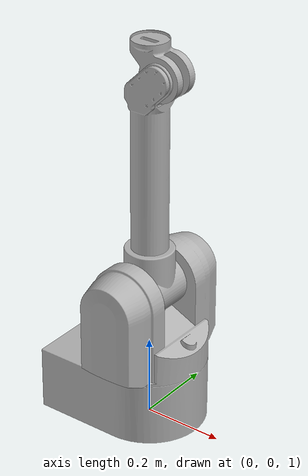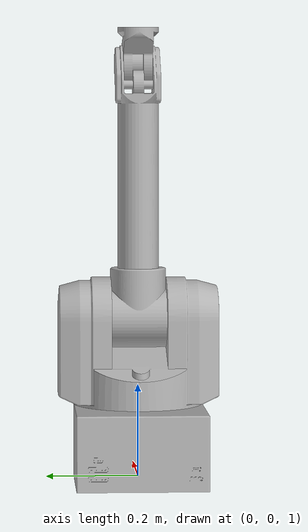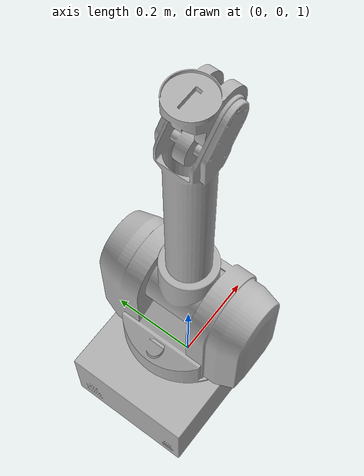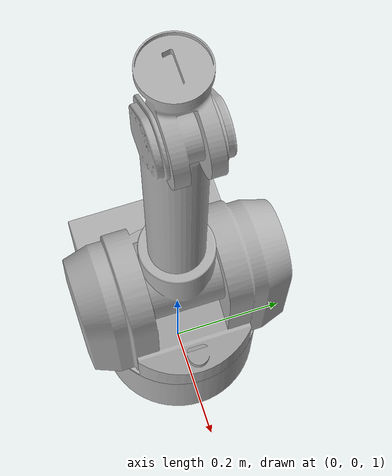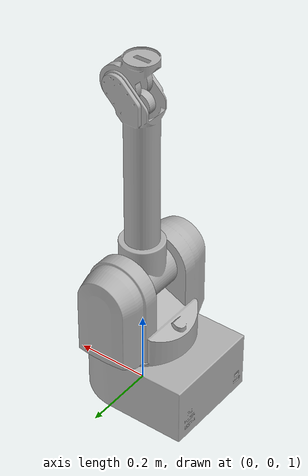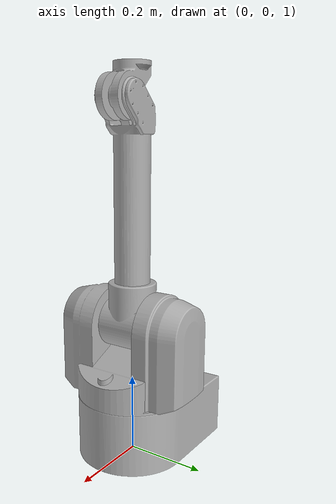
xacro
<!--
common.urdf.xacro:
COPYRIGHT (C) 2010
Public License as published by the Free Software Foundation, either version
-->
<robot name="wam"
  xmlns:xacro="http://www.ros.org/wiki/xacro">

  <!-- Includea all the WAM stuff -->
  <include filename="$(find barrett_model)/models/wam_top.urdf.xacro"/>

  <!-- Root link is in the world frame-->
  <link name="world"/>

  <!-- 4-DOF Wam -->
  <xacro:wam_4dof prefix="wam" parent_link="world" xyz="0.0 0.0 1" rpy="0 0 0" />
</robot>

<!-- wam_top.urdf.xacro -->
<robot
  xmlns:xacro="http://www.ros.org/wiki/xacro"
  xmlns:controller="http://playerstage.sourceforge.net/gazebo/xmlschema/#controller">

  <!-- Some macros used by the WAM urdf -->
  <xacro:include filename="$(find barrett_model)/models/common.urdf.xacro"/>
  <!-- Definition of a single WAM arm -->
  <xacro:include filename="$(find barrett_model)/models/arm.urdf.xacro"/>
  <!-- Definition of all the different parts of a WAM arm -->
  <xacro:include filename="$(find barrett_model)/models/components.urdf.xacro"/>
  <!-- Definitions for the barrett hand -->
  <xacro:include filename="$(find barrett_model)/models/hand.urdf.xacro"/>

  <!-- Materials -->
  <material name="WAMGrey">
    <color rgba="0.7 0.7 0.7 1.0"/>
  </material>

</robot>

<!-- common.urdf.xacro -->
<robot xmlns:xacro="http://ros.org/wiki/xacro">

  <!-- Directories -->
  <xacro:property name="models_path" value="package://barrett_model/models" />
  <xacro:property name="highResModelDirectory" value="${models_path}/meshes/splitModels" />

  <!-- Constants -->
  <xacro:property name="PI" value="3.1415926535897931" />

  <!-- Gazebo macros -->
  <xacro:macro name="gazebo_reference" params="name">
    <gazebo reference="${name}">
      <turnGravityOff>
        false
      </turnGravityOff>
      <selfCollide>
        true
      </selfCollide>
    </gazebo>
  </xacro:macro>

  <!-- Gazebo joint configuration -->
  <xacro:macro name="gz_joint">
    <provideFeedback>true</provideFeedback>
    <implicitSpringDamper>true</implicitSpringDamper>
  </xacro:macro>

  <!-- Gazebo "soft" link which has compliant surface stiffness -->
  <xacro:macro name="gz_soft_link">
  </xacro:macro>

  <xacro:macro name="gz_shiny">
    <visual name='visual_shiny'>
      <xacro:if value="true">
        <material>
          <script>
            <uri>file://$(find barrett_model)/materials/barrett.material</uri>
            <name>Wam/Aluminum</name>
          </script>
        </material>
      </xacro:if>
      <xacro:if value="false">
        <material>
          <ambient>0.7 0.7 0.7 1</ambient>
          <diffuse>0.9 0.9 0.9 1</diffuse>
          <specular>0.5 0.5 0.5 0.3</specular>
          <emissive>0 0 0 0</emissive>
        </material>
      </xacro:if>
    </visual>
  </xacro:macro>

  <xacro:macro name="gz_shiny_blue">
    <visual name='visual_shiny'>
        <material>
          <script>
            <uri>file://$(find barrett_model)/materials/barrett.material</uri>
            <name>BHand/BlueAluminum</name>
          </script>
        </material>
    </visual>
  </xacro:macro>
</robot>

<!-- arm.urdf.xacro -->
<robot xmlns:xacro="http://www.ros.org/wiki/xacro">

  <xacro:include filename="$(find barrett_model)/models/common.urdf.xacro"/>
  <xacro:include filename="$(find barrett_model)/models/components.urdf.xacro"/>

  <xacro:macro name="wam_7dof" params="prefix parent_link xyz rpy">
    <xacro:wam prefix="${prefix}" parent_link="${parent_link}" xyz="${xyz}" rpy="${rpy}"/>
    <xacro:wam_wrist prefix="${prefix}"/>
  </xacro:macro>

  <xacro:macro name="wam_4dof" params="prefix parent_link xyz rpy">
    <xacro:wam prefix="${prefix}" parent_link="${parent_link}" xyz="${xyz}" rpy="${rpy}"/>
    <xacro:wam_stump prefix="${prefix}"/>
  </xacro:macro>

  <!-- upper arm only -->
  <xacro:macro name="wam" params="prefix parent_link xyz rpy">
    <xacro:wam_base prefix="${prefix}" parent_link="${parent_link}" xyz="${xyz}" rpy="${rpy}"/>
    <xacro:wam_shoulder_yaw prefix="${prefix}"/>
    <xacro:wam_shoulder_pitch prefix="${prefix}"/>
    <xacro:wam_upper_arm prefix="${prefix}"/>
  </xacro:macro>

  <!-- forearm with actuation "wrist" -->
  <xacro:macro name="wam_wrist" params="prefix">
    <xacro:wam_forearm prefix="${prefix}"/>
    <xacro:wam_wrist_yaw prefix="${prefix}"/>
    <xacro:wam_wrist_pitch prefix="${prefix}"/>
    <xacro:wam_palm prefix="${prefix}"/>
  </xacro:macro>

</robot>

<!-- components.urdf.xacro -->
<robot xmlns:xacro="http://ros.org/wiki/xacro">

  <include filename="$(find barrett_model)/models/hand.urdf.xacro"/>
  <include filename="$(find barrett_model)/models/common.urdf.xacro"/>

  <xacro:macro name="gz_joint">
      <physics>
        <ode>
          <cfm_damping>true</cfm_damping>
          <cfm>0.0</cfm>
        </ode>
      </physics>
  </xacro:macro>

  <!-- Upper arm macros -->
  <xacro:macro name="wam_base" params="prefix parent_link xyz rpy">
    <joint name="${prefix}/wam_fixed_joint" type="fixed">
      <parent link="${parent_link}"/>
      <child link="${prefix}/base_link"/>
      <origin xyz="${xyz}" rpy="${rpy}"/>
    </joint>

    <link name = "${prefix}/base_link">
      <inertial>
        <origin xyz="0 0 0" />
        <mass value="1" />
        <inertia
          ixx="0.1" ixy="0"   ixz="0"
                  iyy="0.1"   iyz="0"
                            izz="0.1" />
      </inertial>
      <visual>
        <material name="WAMGrey">
          <color rgba="0.7 0.7 0.7 0.0"/>
        </material>
        <geometry>
          <mesh filename="${models_path}/sw_meshes/base_link_fine.STL"/>
        </geometry>
      </visual>
      <collision>
        <geometry>
          <mesh filename="${models_path}/sw_meshes/base_link.STL"/>
        </geometry>
      </collision>
    </link>
  </xacro:macro>

  <xacro:macro name="wam_shoulder_yaw" params="prefix">
    <gazebo reference="${prefix}/base_yaw_joint">
      <xacro:gz_joint/>
    </gazebo>
    <joint name="${prefix}/base_yaw_joint" type="revolute">
      <parent link="${prefix}/base_link"/>
      <child link="${prefix}/shoulder_yaw_link"/>
      <origin xyz="0 0 0.346" rpy="0 0 0"/>
      <axis xyz="0 0 1"/>
      <limit effort="60" lower="-2.6" upper="2.6" velocity="0.50"/>
    </joint>

    <link name="${prefix}/shoulder_yaw_link" >
      <inertial>
        <origin xyz="-.00443422 -.00066489 -0.1289039 " />
        <mass value="5.0" />
        <inertia
          ixx=".13488033"  ixy="-0.00012485"   ixz="0.00213041"
                           iyy=".09046330"    iyz="-.00068555"
                                              izz=".11328369" />
      </inertial>
      <visual>
        <material name="WAMGrey">
          <color rgba="0.7 0.7 0.7 1.0"/>
        </material>
        <geometry>
          <mesh filename="${models_path}/sw_meshes/shoulder_link_fine.STL"/>
        </geometry>
      </visual>
      <collision>
        <geometry>
          <mesh filename="${models_path}/sw_meshes/shoulder_link.STL"/>
        </geometry>
      </collision>
    </link>
  </xacro:macro>

  <xacro:macro name="wam_shoulder_pitch" params="prefix">
    <gazebo reference="${prefix}/shoulder_pitch_joint">
      <xacro:gz_joint/>
    </gazebo>
    <joint name="${prefix}/shoulder_pitch_joint" type="revolute">
      <parent link="${prefix}/shoulder_yaw_link"/>
      <child link="${prefix}/shoulder_pitch_link"/>
      <origin xyz="0 0 0" rpy="${-PI/2} 0 0"/>
      <axis xyz="0 0 1"/>
      <limit effort="60" lower="-1.985" upper="1.985" velocity="0.5"/>
    </joint>

    <link name="${prefix}/shoulder_pitch_link" >
      <visual>
        <material name="WAMGrey">
          <color rgba="0.7 0.7 0.7 1.0"/>
        </material>
        <geometry>
          <mesh filename="${models_path}/sw_meshes/shoulder_pitch_link_fine.STL"/>
        </geometry>
      </visual>
      <inertial>
        <origin xyz="-.00236981 -.01542114 .03105614 " />
        <mass value="3.87493756" />
        <inertia
          ixx="0.02140958"  ixy="-0.00002461"  ixz="0.00027172"
                            iyy="0.015589060"  iyz="0.0018192"
                                               izz="0.01377875" />
      </inertial>
      <collision>
        <geometry>
          <mesh filename="${models_path}/sw_meshes/shoulder_pitch_link.STL"/>
        </geometry>
      </collision>
    </link>
  </xacro:macro>

  <xacro:macro name="wam_upper_arm" params="prefix">
    <gazebo reference="${prefix}/shoulder_yaw_joint">
      <xacro:gz_joint/>
    </gazebo>
    <joint name="${prefix}/shoulder_yaw_joint" type="revolute">
      <parent link="${prefix}/shoulder_pitch_link"/>
      <child link="${prefix}/upper_arm_link"/>
      <origin xyz="0 0 0" rpy="${PI/2} 0 0"/>
      <axis xyz="0 0 1"/>
      <limit effort="45" lower="-2.8" upper="2.8" velocity="0.5"/>
    </joint>

    <link name="${prefix}/upper_arm_link" >
      <inertial>
        <origin xyz="0.00683258580000000 0.000033090000000 0.342492300000000" />
        <mass value="1.80228141" />
        <inertia
          ixx=".05911077"  ixy="-0.00000738"  ixz="-0.00249612"
                           iyy="0.05927043"   iyz="0.00001767"
                                              izz="0.0032455" />
      </inertial>
      <visual>
        <material name="WAMGrey">
          <color rgba="0.7 0.7 0.7 1.0"/>
        </material>
        <geometry>
          <mesh filename="${models_path}/sw_meshes/upper_arm_link_fine.STL"/>
        </geometry>
      </visual>
      <collision>
        <geometry>
          <mesh filename="${models_path}/sw_meshes/upper_arm_link.STL"/>
        </geometry>
      </collision>
    </link>
  </xacro:macro>

  <!-- Forearm macros -->
  <xacro:macro name="wam_forearm" params="prefix">
    <gazebo reference="${prefix}/elbow_pitch_joint">
      <xacro:gz_joint/>
    </gazebo>
    <joint name="${prefix}/elbow_pitch_joint" type="revolute">
      <parent link="${prefix}/upper_arm_link"/>
      <child link="${prefix}/forearm_link"/>
      <origin xyz="0.045 0 0.55" rpy="${-PI/2} 0 0"/>
      <axis xyz="0 0 1"/>
      <limit effort="20" lower="-0.9" upper="${PI}" velocity="0.20"/>
    </joint>
    <link name="${prefix}/forearm_link" >
      <inertial>
        <mass value="1.00016804" />
        <origin xyz="-0.04001488 -.12271662 -.00022942 " rpy="0 0 0" />
        <inertia
          ixx="0.01491672" ixy="0.001506040000000" ixz="0.000017410000000"
                           iyy="0.002944630000000" iyz="0.000021090000000"
                                                   izz="0.014829880000000" />
      </inertial>
      <visual>
        <material name="WAMGrey">
          <color rgba="0.7 0.7 0.7 1.0"/>
        </material>
        <geometry>
          <mesh filename="${models_path}/sw_meshes/elbow_link_fine.STL"/>
        </geometry>
      </visual>
      <collision>
        <geometry>
          <mesh filename="${models_path}/sw_meshes/elbow_link.STL"/>
        </geometry>
      </collision>

      <visual>
        <material name="WAMGrey">
          <color rgba="0.7 0.7 0.7 1.0"/>
        </material>
        <origin xyz="-0.045 -0.0730 0" rpy="${PI/2} 0 0" />
        <geometry>
          <mesh filename="${models_path}/sw_meshes/forearm_link_fine.STL"/>
        </geometry>
      </visual>
      <collision>
        <origin xyz="-0.045 -0.0730 0" rpy="${PI/2} 0 0" />
        <geometry>
          <mesh filename="${models_path}/sw_meshes/forearm_link.STL"/>
        </geometry>
      </collision>
    </link>
  </xacro:macro>

  <xacro:macro name="wam_wrist_yaw" params="prefix">
    <gazebo reference="${prefix}/wrist_yaw_joint">
      <xacro:gz_joint/>
    </gazebo>
    <joint name="${prefix}/wrist_yaw_joint" type="revolute">
      <parent link="${prefix}/forearm_link"/>
      <child link="${prefix}/wrist_yaw_link"/>
      <origin xyz="-0.045 -0.3 0" rpy="${PI/2} 0 0"/>
      <axis xyz="0 0 1"/>
      <limit effort="5" lower="-4.8" upper="1.3" velocity="0.20"/>
    </joint>
    <link name="${prefix}/wrist_yaw_link" >
      <inertial>
        <origin xyz="0.00008921 0.00435824 -0.00511217 " />
        <mass value="1.12376019" />
        <inertia  ixx="0.00005029" ixy="0.00000020"  ixz="0.00007582"
          iyy="0.00007582"  iyz="-0.00000359"
          izz="0.00006270" />
      </inertial>
      <visual>
        <material name="WAMGrey">
          <color rgba="0.7 0.7 0.7 1.0"/>
        </material>
        <origin xyz="0 0 0" rpy="0 0 0" />
        <geometry>
          <mesh filename="${models_path}/sw_meshes/wrist_yaw_link_fine.STL"/>
        </geometry>
      </visual>
      <collision>
        <origin xyz="0 0 0" rpy="0 0 0" />
        <geometry>
          <mesh filename="${models_path}/sw_meshes/wrist_yaw_link.STL"/>
        </geometry>
      </collision>
    </link>
  </xacro:macro>

  <xacro:macro name="wam_wrist_pitch" params="prefix">
    <gazebo reference="${prefix}/wrist_pitch_joint">
      <xacro:gz_joint/>
    </gazebo>
    <joint name="${prefix}/wrist_pitch_joint" type="revolute">
      <parent link="${prefix}/wrist_yaw_link"/>
      <child link="${prefix}/wrist_pitch_link"/>
      <origin xyz="0 0 0" rpy="${-PI/2} 0 0"/>
      <axis xyz="0 0 1"/>
      <limit effort="5" lower="-1.5707" upper="1.5707" velocity="0.20"/>
    </joint>
    <link name="${prefix}/wrist_pitch_link" >
      <inertial>
        <origin xyz="-0.00012262 -0.02468336 -0.01703194 " rpy="0 0 0" />
        <mass value="0.51797364" />
        <inertia
          ixx="0.00055516"  ixy="0.00000061"  ixz="-0.00000074"
          iyy="0.00024367"  iyz="-0.00004590"
          izz="0.00045358" />
      </inertial>
      <visual>
        <material name="WAMGrey">
          <color rgba="0.7 0.7 0.7 1.0"/>
        </material>
        <geometry>
          <mesh filename="${models_path}/sw_meshes/wrist_pitch_link_fine.STL"/>
        </geometry>
      </visual>
      <collision>
        <geometry>
          <mesh filename="${models_path}/sw_meshes/wrist_pitch_link.STL"/>
        </geometry>
      </collision>
    </link>
  </xacro:macro>

  <!-- Palm without force-torque sensor -->
  <xacro:macro name="wam_palm" params="prefix">
    <gazebo reference="${prefix}/palm_yaw_joint">
      <xacro:gz_joint/>
    </gazebo>
    <joint name="${prefix}/palm_yaw_joint" type="revolute">
      <parent link="${prefix}/wrist_pitch_link"/>
      <child link="${prefix}/wrist_palm_link"/>
      <origin xyz="0 0 0" rpy="${PI/2} 0 0"/>
      <axis xyz="0 0 1"/>
      <limit effort="5" lower="-2.95" upper="2.95" velocity="0.20"/><!-- 2.95 is a limit taken in from 3 due to saftey and differences between arms. -->
    </joint>
    <link name="${prefix}/wrist_palm_link" >
      <inertial>
        <origin xyz="0.0 0.0 0.0" rpy="0 0 0" />
        <mass value="0.08286134" />
        <inertia  ixx="0.00010859" ixy="0.00000000"  ixz="-0.00000000"
          iyy="0.00020683"  iyz="-0.0000000"
          izz="0.00010851" />
      </inertial>
      <visual>
        <material name="WAMGrey">
          <color rgba="0.7 0.7 0.7 1.0"/>
        </material>
        <origin xyz="0 0 0" rpy="0 0 0" />
        <geometry>
          <mesh filename="${models_path}/sw_meshes/wrist_palm_link_fine.STL"/>
        </geometry>
      </visual>
      <collision>
        <origin xyz="0 0 0" rpy="0 0 0" />
        <geometry>
          <mesh filename="${models_path}/sw_meshes/wrist_palm_link.STL"/>
        </geometry>
      </collision>
    </link>
  </xacro:macro>

  <!-- Hollow forearm macros -->
          <!--iyy="0.01482988"   iyz="-0.00002109"-->

          <!--iyy="0.00007582"  iyz="-0.00000359"-->

  <!-- Palm with ForceTorque macros -->
          <!--iyy="0.00020683"  iyz="-0.0000000"-->

  <xacro:macro name="wam_stump" params="prefix">
    <joint name="${prefix}/elbow_pitch_joint" type="revolute">
      <parent link="${prefix}/upper_arm_link"/>
      <child link="${prefix}/stump_link"/>
      <origin xyz="0.045 0 0.55" rpy="${-PI/2} 0 0"/>
      <axis xyz="0 0 1"/>
      <limit effort="15" lower="-0.9" upper="${PI}" velocity="0.20"/>
    </joint>
    <link name="${prefix}/stump_link" >
      <inertial>
        <mass value="0.408" />
        <origin xyz="-0.0195 -.02566 -.00022942 " rpy="0 0 0" />
        <inertia
          ixx="0.01491672" ixy="0.001506040000000" ixz="0.000017410000000"
                           iyy="0.002944630000000" iyz="0.000021090000000"
                                                   izz="0.014829880000000" />
      </inertial>
      <visual>
        <material name="WAMGrey">
          <color rgba="0.7 0.7 0.7 1.0"/>
        </material>
        <geometry>
          <mesh filename="${models_path}/sw_meshes/elbow_link_fine.STL"/>
        </geometry>
      </visual>
      <collision>
        <geometry>
          <mesh filename="${models_path}/sw_meshes/elbow_link.STL"/>
        </geometry>
      </collision>
    </link>
  </xacro:macro>
</robot>
